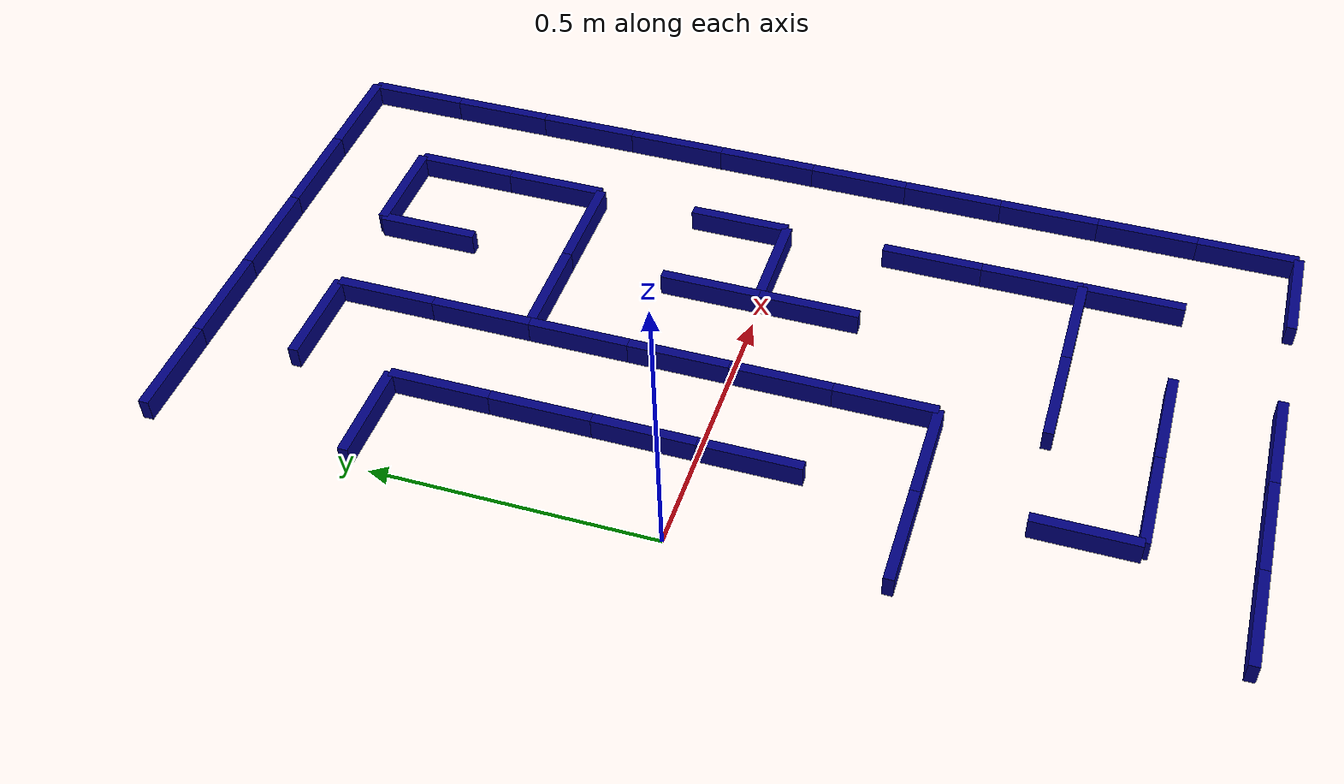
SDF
<sdf version="1.6">
 <world name="room">
  <include><uri>model://sun</uri></include>
  <model name="wall3">
   <static>true</static>
   <pose>0.27 0.72 0.02 0 0 0</pose>
   <link name="tile3">
    <pose>0 0 0.001 0 0 0</pose>
    <visual name="visual">
     <geometry><box><size>0.18 0.018000000000000002 0.04</size></box></geometry>
     <material><ambient>0 0 0.5 0</ambient></material>
    </visual>
    <collision name="collision">
     <geometry><box><size>0.18 0.018000000000000002 0.04</size></box></geometry>
    </collision>
   </link>
  </model>
  <model name="wall4">
   <static>true</static>
   <pose>0.63 0.72 0.02 0 0 0</pose>
   <link name="tile4">
    <pose>0 0 0.001 0 0 0</pose>
    <visual name="visual">
     <geometry><box><size>0.18 0.018000000000000002 0.04</size></box></geometry>
     <material><ambient>0 0 0.5 0</ambient></material>
    </visual>
    <collision name="collision">
     <geometry><box><size>0.18 0.018000000000000002 0.04</size></box></geometry>
    </collision>
   </link>
  </model>
  <model name="wall8">
   <static>true</static>
   <pose>0.09 0.54 0.02 0 0 0</pose>
   <link name="tile8">
    <pose>0 0 0.001 0 0 0</pose>
    <visual name="visual">
     <geometry><box><size>0.18 0.018000000000000002 0.04</size></box></geometry>
     <material><ambient>0 0 0.5 0</ambient></material>
    </visual>
    <collision name="collision">
     <geometry><box><size>0.18 0.018000000000000002 0.04</size></box></geometry>
    </collision>
   </link>
  </model>
  <model name="wall9">
   <static>true</static>
   <pose>0.36 0.63 0.02 0 0 0</pose>
   <link name="tile9">
    <pose>0 0 0.001 0 0 0</pose>
    <visual name="visual">
     <geometry><box><size>0.018000000000000002 0.18 0.04</size></box></geometry>
     <material><ambient>0 0 0.5 0</ambient></material>
    </visual>
    <collision name="collision">
     <geometry><box><size>0.018000000000000002 0.18 0.04</size></box></geometry>
    </collision>
   </link>
  </model>
  <model name="wall10">
   <static>true</static>
   <pose>0.54 0.63 0.02 0 0 0</pose>
   <link name="tile10">
    <pose>0 0 0.001 0 0 0</pose>
    <visual name="visual">
     <geometry><box><size>0.018000000000000002 0.18 0.04</size></box></geometry>
     <material><ambient>0 0 0.5 0</ambient></material>
    </visual>
    <collision name="collision">
     <geometry><box><size>0.018000000000000002 0.18 0.04</size></box></geometry>
    </collision>
   </link>
  </model>
  <model name="wall11">
   <static>true</static>
   <pose>0.72 0.63 0.02 0 0 0</pose>
   <link name="tile11">
    <pose>0 0 0.001 0 0 0</pose>
    <visual name="visual">
     <geometry><box><size>0.018000000000000002 0.18 0.04</size></box></geometry>
     <material><ambient>0 0 0.5 0</ambient></material>
    </visual>
    <collision name="collision">
     <geometry><box><size>0.018000000000000002 0.18 0.04</size></box></geometry>
    </collision>
   </link>
  </model>
  <model name="wall16">
   <static>true</static>
   <pose>0.18 0.45 0.02 0 0 0</pose>
   <link name="tile16">
    <pose>0 0 0.001 0 0 0</pose>
    <visual name="visual">
     <geometry><box><size>0.018000000000000002 0.18 0.04</size></box></geometry>
     <material><ambient>0 0 0.5 0</ambient></material>
    </visual>
    <collision name="collision">
     <geometry><box><size>0.018000000000000002 0.18 0.04</size></box></geometry>
    </collision>
   </link>
  </model>
  <model name="wall17">
   <static>true</static>
   <pose>0.36 0.45 0.02 0 0 0</pose>
   <link name="tile17">
    <pose>0 0 0.001 0 0 0</pose>
    <visual name="visual">
     <geometry><box><size>0.018000000000000002 0.18 0.04</size></box></geometry>
     <material><ambient>0 0 0.5 0</ambient></material>
    </visual>
    <collision name="collision">
     <geometry><box><size>0.018000000000000002 0.18 0.04</size></box></geometry>
    </collision>
   </link>
  </model>
  <model name="wall18">
   <static>true</static>
   <pose>0.45 0.36 0.02 0 0 0</pose>
   <link name="tile18">
    <pose>0 0 0.001 0 0 0</pose>
    <visual name="visual">
     <geometry><box><size>0.18 0.018000000000000002 0.04</size></box></geometry>
     <material><ambient>0 0 0.5 0</ambient></material>
    </visual>
    <collision name="collision">
     <geometry><box><size>0.18 0.018000000000000002 0.04</size></box></geometry>
    </collision>
   </link>
  </model>
  <model name="wall19">
   <static>true</static>
   <pose>0.72 0.45 0.02 0 0 0</pose>
   <link name="tile19">
    <pose>0 0 0.001 0 0 0</pose>
    <visual name="visual">
     <geometry><box><size>0.018000000000000002 0.18 0.04</size></box></geometry>
     <material><ambient>0 0 0.5 0</ambient></material>
    </visual>
    <collision name="collision">
     <geometry><box><size>0.018000000000000002 0.18 0.04</size></box></geometry>
    </collision>
   </link>
  </model>
  <model name="wall23">
   <static>true</static>
   <pose>0.18 0.27 0.02 0 0 0</pose>
   <link name="tile23">
    <pose>0 0 0.001 0 0 0</pose>
    <visual name="visual">
     <geometry><box><size>0.018000000000000002 0.18 0.04</size></box></geometry>
     <material><ambient>0 0 0.5 0</ambient></material>
    </visual>
    <collision name="collision">
     <geometry><box><size>0.018000000000000002 0.18 0.04</size></box></geometry>
    </collision>
   </link>
  </model>
  <model name="wall24">
   <static>true</static>
   <pose>0.36 0.27 0.02 0 0 0</pose>
   <link name="tile24">
    <pose>0 0 0.001 0 0 0</pose>
    <visual name="visual">
     <geometry><box><size>0.018000000000000002 0.18 0.04</size></box></geometry>
     <material><ambient>0 0 0.5 0</ambient></material>
    </visual>
    <collision name="collision">
     <geometry><box><size>0.018000000000000002 0.18 0.04</size></box></geometry>
    </collision>
   </link>
  </model>
  <model name="wall25">
   <static>true</static>
   <pose>0.63 0.36 0.02 0 0 0</pose>
   <link name="tile25">
    <pose>0 0 0.001 0 0 0</pose>
    <visual name="visual">
     <geometry><box><size>0.18 0.018000000000000002 0.04</size></box></geometry>
     <material><ambient>0 0 0.5 0</ambient></material>
    </visual>
    <collision name="collision">
     <geometry><box><size>0.18 0.018000000000000002 0.04</size></box></geometry>
    </collision>
   </link>
  </model>
  <model name="wall29">
   <static>true</static>
   <pose>0.18 0.09 0.02 0 0 0</pose>
   <link name="tile29">
    <pose>0 0 0.001 0 0 0</pose>
    <visual name="visual">
     <geometry><box><size>0.018000000000000002 0.18 0.04</size></box></geometry>
     <material><ambient>0 0 0.5 0</ambient></material>
    </visual>
    <collision name="collision">
     <geometry><box><size>0.018000000000000002 0.18 0.04</size></box></geometry>
    </collision>
   </link>
  </model>
  <model name="wall30">
   <static>true</static>
   <pose>0.36 0.09 0.02 0 0 0</pose>
   <link name="tile30">
    <pose>0 0 0.001 0 0 0</pose>
    <visual name="visual">
     <geometry><box><size>0.018000000000000002 0.18 0.04</size></box></geometry>
     <material><ambient>0 0 0.5 0</ambient></material>
    </visual>
    <collision name="collision">
     <geometry><box><size>0.018000000000000002 0.18 0.04</size></box></geometry>
    </collision>
   </link>
  </model>
  <model name="wall31">
   <static>true</static>
   <pose>0.54 0.09 0.02 0 0 0</pose>
   <link name="tile31">
    <pose>0 0 0.001 0 0 0</pose>
    <visual name="visual">
     <geometry><box><size>0.018000000000000002 0.18 0.04</size></box></geometry>
     <material><ambient>0 0 0.5 0</ambient></material>
    </visual>
    <collision name="collision">
     <geometry><box><size>0.018000000000000002 0.18 0.04</size></box></geometry>
    </collision>
   </link>
  </model>
  <model name="wall32">
   <static>true</static>
   <pose>0.72 0.09 0.02 0 0 0</pose>
   <link name="tile32">
    <pose>0 0 0.001 0 0 0</pose>
    <visual name="visual">
     <geometry><box><size>0.018000000000000002 0.18 0.04</size></box></geometry>
     <material><ambient>0 0 0.5 0</ambient></material>
    </visual>
    <collision name="collision">
     <geometry><box><size>0.018000000000000002 0.18 0.04</size></box></geometry>
    </collision>
   </link>
  </model>
  <model name="wall37">
   <static>true</static>
   <pose>0.18 -0.09 0.02 0 0 0</pose>
   <link name="tile37">
    <pose>0 0 0.001 0 0 0</pose>
    <visual name="visual">
     <geometry><box><size>0.018000000000000002 0.18 0.04</size></box></geometry>
     <material><ambient>0 0 0.5 0</ambient></material>
    </visual>
    <collision name="collision">
     <geometry><box><size>0.018000000000000002 0.18 0.04</size></box></geometry>
    </collision>
   </link>
  </model>
  <model name="wall38">
   <static>true</static>
   <pose>0.36 -0.09 0.02 0 0 0</pose>
   <link name="tile38">
    <pose>0 0 0.001 0 0 0</pose>
    <visual name="visual">
     <geometry><box><size>0.018000000000000002 0.18 0.04</size></box></geometry>
     <material><ambient>0 0 0.5 0</ambient></material>
    </visual>
    <collision name="collision">
     <geometry><box><size>0.018000000000000002 0.18 0.04</size></box></geometry>
    </collision>
   </link>
  </model>
  <model name="wall39">
   <static>true</static>
   <pose>0.54 -0.09 0.02 0 0 0</pose>
   <link name="tile39">
    <pose>0 0 0.001 0 0 0</pose>
    <visual name="visual">
     <geometry><box><size>0.018000000000000002 0.18 0.04</size></box></geometry>
     <material><ambient>0 0 0.5 0</ambient></material>
    </visual>
    <collision name="collision">
     <geometry><box><size>0.018000000000000002 0.18 0.04</size></box></geometry>
    </collision>
   </link>
  </model>
  <model name="wall40">
   <static>true</static>
   <pose>0.63 0.0 0.02 0 0 0</pose>
   <link name="tile40">
    <pose>0 0 0.001 0 0 0</pose>
    <visual name="visual">
     <geometry><box><size>0.18 0.018000000000000002 0.04</size></box></geometry>
     <material><ambient>0 0 0.5 0</ambient></material>
    </visual>
    <collision name="collision">
     <geometry><box><size>0.18 0.018000000000000002 0.04</size></box></geometry>
    </collision>
   </link>
  </model>
  <model name="wall44">
   <static>true</static>
   <pose>0.09 -0.36 0.02 0 0 0</pose>
   <link name="tile44">
    <pose>0 0 0.001 0 0 0</pose>
    <visual name="visual">
     <geometry><box><size>0.18 0.018000000000000002 0.04</size></box></geometry>
     <material><ambient>0 0 0.5 0</ambient></material>
    </visual>
    <collision name="collision">
     <geometry><box><size>0.18 0.018000000000000002 0.04</size></box></geometry>
    </collision>
   </link>
  </model>
  <model name="wall45">
   <static>true</static>
   <pose>0.36 -0.27 0.02 0 0 0</pose>
   <link name="tile45">
    <pose>0 0 0.001 0 0 0</pose>
    <visual name="visual">
     <geometry><box><size>0.018000000000000002 0.18 0.04</size></box></geometry>
     <material><ambient>0 0 0.5 0</ambient></material>
    </visual>
    <collision name="collision">
     <geometry><box><size>0.018000000000000002 0.18 0.04</size></box></geometry>
    </collision>
   </link>
  </model>
  <model name="wall46">
   <static>true</static>
   <pose>0.72 -0.27 0.02 0 0 0</pose>
   <link name="tile46">
    <pose>0 0 0.001 0 0 0</pose>
    <visual name="visual">
     <geometry><box><size>0.018000000000000002 0.18 0.04</size></box></geometry>
     <material><ambient>0 0 0.5 0</ambient></material>
    </visual>
    <collision name="collision">
     <geometry><box><size>0.018000000000000002 0.18 0.04</size></box></geometry>
    </collision>
   </link>
  </model>
  <model name="wall51">
   <static>true</static>
   <pose>0.27 -0.36 0.02 0 0 0</pose>
   <link name="tile51">
    <pose>0 0 0.001 0 0 0</pose>
    <visual name="visual">
     <geometry><box><size>0.18 0.018000000000000002 0.04</size></box></geometry>
     <material><ambient>0 0 0.5 0</ambient></material>
    </visual>
    <collision name="collision">
     <geometry><box><size>0.18 0.018000000000000002 0.04</size></box></geometry>
    </collision>
   </link>
  </model>
  <model name="wall52">
   <static>true</static>
   <pose>0.45 -0.54 0.02 0 0 0</pose>
   <link name="tile52">
    <pose>0 0 0.001 0 0 0</pose>
    <visual name="visual">
     <geometry><box><size>0.18 0.018000000000000002 0.04</size></box></geometry>
     <material><ambient>0 0 0.5 0</ambient></material>
    </visual>
    <collision name="collision">
     <geometry><box><size>0.18 0.018000000000000002 0.04</size></box></geometry>
    </collision>
   </link>
  </model>
  <model name="wall53">
   <static>true</static>
   <pose>0.72 -0.45 0.02 0 0 0</pose>
   <link name="tile53">
    <pose>0 0 0.001 0 0 0</pose>
    <visual name="visual">
     <geometry><box><size>0.018000000000000002 0.18 0.04</size></box></geometry>
     <material><ambient>0 0 0.5 0</ambient></material>
    </visual>
    <collision name="collision">
     <geometry><box><size>0.018000000000000002 0.18 0.04</size></box></geometry>
    </collision>
   </link>
  </model>
  <model name="wall54">
   <static>true</static>
   <pose>0.63 -0.54 0.02 0 0 0</pose>
   <link name="tile54">
    <pose>0 0 0.001 0 0 0</pose>
    <visual name="visual">
     <geometry><box><size>0.18 0.018000000000000002 0.04</size></box></geometry>
     <material><ambient>0 0 0.5 0</ambient></material>
    </visual>
    <collision name="collision">
     <geometry><box><size>0.18 0.018000000000000002 0.04</size></box></geometry>
    </collision>
   </link>
  </model>
  <model name="wall60">
   <static>true</static>
   <pose>0.18 -0.63 0.02 0 0 0</pose>
   <link name="tile60">
    <pose>0 0 0.001 0 0 0</pose>
    <visual name="visual">
     <geometry><box><size>0.018000000000000002 0.18 0.04</size></box></geometry>
     <material><ambient>0 0 0.5 0</ambient></material>
    </visual>
    <collision name="collision">
     <geometry><box><size>0.018000000000000002 0.18 0.04</size></box></geometry>
    </collision>
   </link>
  </model>
  <model name="wall61">
   <static>true</static>
   <pose>0.27 -0.72 0.02 0 0 0</pose>
   <link name="tile61">
    <pose>0 0 0.001 0 0 0</pose>
    <visual name="visual">
     <geometry><box><size>0.18 0.018000000000000002 0.04</size></box></geometry>
     <material><ambient>0 0 0.5 0</ambient></material>
    </visual>
    <collision name="collision">
     <geometry><box><size>0.18 0.018000000000000002 0.04</size></box></geometry>
    </collision>
   </link>
  </model>
  <model name="wall62">
   <static>true</static>
   <pose>0.45 -0.72 0.02 0 0 0</pose>
   <link name="tile62">
    <pose>0 0 0.001 0 0 0</pose>
    <visual name="visual">
     <geometry><box><size>0.18 0.018000000000000002 0.04</size></box></geometry>
     <material><ambient>0 0 0.5 0</ambient></material>
    </visual>
    <collision name="collision">
     <geometry><box><size>0.18 0.018000000000000002 0.04</size></box></geometry>
    </collision>
   </link>
  </model>
  <model name="wall63">
   <static>true</static>
   <pose>0.72 -0.63 0.02 0 0 0</pose>
   <link name="tile63">
    <pose>0 0 0.001 0 0 0</pose>
    <visual name="visual">
     <geometry><box><size>0.018000000000000002 0.18 0.04</size></box></geometry>
     <material><ambient>0 0 0.5 0</ambient></material>
    </visual>
    <collision name="collision">
     <geometry><box><size>0.018000000000000002 0.18 0.04</size></box></geometry>
    </collision>
   </link>
  </model>
  <model name="wall69">
   <static>true</static>
   <pose>0.09 0.9 0.02 0 0 0</pose>
   <link name="tile69">
    <pose>0 0 0.001 0 0 0</pose>
    <visual name="visual">
     <geometry><box><size>0.18 0.018000000000000002 0.04</size></box></geometry>
     <material><ambient>0 0 0.5 0</ambient></material>
    </visual>
    <collision name="collision">
     <geometry><box><size>0.18 0.018000000000000002 0.04</size></box></geometry>
    </collision>
   </link>
  </model>
  <model name="wall70">
   <static>true</static>
   <pose>0.27 0.9 0.02 0 0 0</pose>
   <link name="tile70">
    <pose>0 0 0.001 0 0 0</pose>
    <visual name="visual">
     <geometry><box><size>0.18 0.018000000000000002 0.04</size></box></geometry>
     <material><ambient>0 0 0.5 0</ambient></material>
    </visual>
    <collision name="collision">
     <geometry><box><size>0.18 0.018000000000000002 0.04</size></box></geometry>
    </collision>
   </link>
  </model>
  <model name="wall71">
   <static>true</static>
   <pose>0.45 0.9 0.02 0 0 0</pose>
   <link name="tile71">
    <pose>0 0 0.001 0 0 0</pose>
    <visual name="visual">
     <geometry><box><size>0.18 0.018000000000000002 0.04</size></box></geometry>
     <material><ambient>0 0 0.5 0</ambient></material>
    </visual>
    <collision name="collision">
     <geometry><box><size>0.18 0.018000000000000002 0.04</size></box></geometry>
    </collision>
   </link>
  </model>
  <model name="wall72">
   <static>true</static>
   <pose>0.63 0.9 0.02 0 0 0</pose>
   <link name="tile72">
    <pose>0 0 0.001 0 0 0</pose>
    <visual name="visual">
     <geometry><box><size>0.18 0.018000000000000002 0.04</size></box></geometry>
     <material><ambient>0 0 0.5 0</ambient></material>
    </visual>
    <collision name="collision">
     <geometry><box><size>0.18 0.018000000000000002 0.04</size></box></geometry>
    </collision>
   </link>
  </model>
  <model name="wall73">
   <static>true</static>
   <pose>0.81 0.9 0.02 0 0 0</pose>
   <link name="tile73">
    <pose>0 0 0.001 0 0 0</pose>
    <visual name="visual">
     <geometry><box><size>0.18 0.018000000000000002 0.04</size></box></geometry>
     <material><ambient>0 0 0.5 0</ambient></material>
    </visual>
    <collision name="collision">
     <geometry><box><size>0.18 0.018000000000000002 0.04</size></box></geometry>
    </collision>
   </link>
  </model>
  <model name="wall79">
   <static>true</static>
   <pose>0.09 -0.9 0.02 0 0 0</pose>
   <link name="tile79">
    <pose>0 0 0.001 0 0 0</pose>
    <visual name="visual">
     <geometry><box><size>0.18 0.018000000000000002 0.04</size></box></geometry>
     <material><ambient>0 0 0.5 0</ambient></material>
    </visual>
    <collision name="collision">
     <geometry><box><size>0.18 0.018000000000000002 0.04</size></box></geometry>
    </collision>
   </link>
  </model>
  <model name="wall80">
   <static>true</static>
   <pose>0.27 -0.9 0.02 0 0 0</pose>
   <link name="tile80">
    <pose>0 0 0.001 0 0 0</pose>
    <visual name="visual">
     <geometry><box><size>0.18 0.018000000000000002 0.04</size></box></geometry>
     <material><ambient>0 0 0.5 0</ambient></material>
    </visual>
    <collision name="collision">
     <geometry><box><size>0.18 0.018000000000000002 0.04</size></box></geometry>
    </collision>
   </link>
  </model>
  <model name="wall81">
   <static>true</static>
   <pose>0.45 -0.9 0.02 0 0 0</pose>
   <link name="tile81">
    <pose>0 0 0.001 0 0 0</pose>
    <visual name="visual">
     <geometry><box><size>0.18 0.018000000000000002 0.04</size></box></geometry>
     <material><ambient>0 0 0.5 0</ambient></material>
    </visual>
    <collision name="collision">
     <geometry><box><size>0.18 0.018000000000000002 0.04</size></box></geometry>
    </collision>
   </link>
  </model>
  <model name="wall82">
   <static>true</static>
   <pose>0.45 -0.9 0.02 0 0 0</pose>
   <link name="tile82">
    <pose>0 0 0.001 0 0 0</pose>
    <visual name="visual">
     <geometry><box><size>0.18 0.018000000000000002 0.04</size></box></geometry>
     <material><ambient>0 0 0.5 0</ambient></material>
    </visual>
    <collision name="collision">
     <geometry><box><size>0.18 0.018000000000000002 0.04</size></box></geometry>
    </collision>
   </link>
  </model>
  <model name="wall83">
   <static>true</static>
   <pose>0.81 -0.9 0.02 0 0 0</pose>
   <link name="tile83">
    <pose>0 0 0.001 0 0 0</pose>
    <visual name="visual">
     <geometry><box><size>0.18 0.018000000000000002 0.04</size></box></geometry>
     <material><ambient>0 0 0.5 0</ambient></material>
    </visual>
    <collision name="collision">
     <geometry><box><size>0.18 0.018000000000000002 0.04</size></box></geometry>
    </collision>
   </link>
  </model>
  <model name="wall94">
   <static>true</static>
   <pose>0.9 0.81 0.02 0 0 0</pose>
   <link name="tile94">
    <pose>0 0 0.001 0 0 0</pose>
    <visual name="visual">
     <geometry><box><size>0.018000000000000002 0.18 0.04</size></box></geometry>
     <material><ambient>0 0 0.5 0</ambient></material>
    </visual>
    <collision name="collision">
     <geometry><box><size>0.018000000000000002 0.18 0.04</size></box></geometry>
    </collision>
   </link>
  </model>
  <model name="wall95">
   <static>true</static>
   <pose>0.9 0.63 0.02 0 0 0</pose>
   <link name="tile95">
    <pose>0 0 0.001 0 0 0</pose>
    <visual name="visual">
     <geometry><box><size>0.018000000000000002 0.18 0.04</size></box></geometry>
     <material><ambient>0 0 0.5 0</ambient></material>
    </visual>
    <collision name="collision">
     <geometry><box><size>0.018000000000000002 0.18 0.04</size></box></geometry>
    </collision>
   </link>
  </model>
  <model name="wall96">
   <static>true</static>
   <pose>0.9 0.45 0.02 0 0 0</pose>
   <link name="tile96">
    <pose>0 0 0.001 0 0 0</pose>
    <visual name="visual">
     <geometry><box><size>0.018000000000000002 0.18 0.04</size></box></geometry>
     <material><ambient>0 0 0.5 0</ambient></material>
    </visual>
    <collision name="collision">
     <geometry><box><size>0.018000000000000002 0.18 0.04</size></box></geometry>
    </collision>
   </link>
  </model>
  <model name="wall97">
   <static>true</static>
   <pose>0.9 0.27 0.02 0 0 0</pose>
   <link name="tile97">
    <pose>0 0 0.001 0 0 0</pose>
    <visual name="visual">
     <geometry><box><size>0.018000000000000002 0.18 0.04</size></box></geometry>
     <material><ambient>0 0 0.5 0</ambient></material>
    </visual>
    <collision name="collision">
     <geometry><box><size>0.018000000000000002 0.18 0.04</size></box></geometry>
    </collision>
   </link>
  </model>
  <model name="wall98">
   <static>true</static>
   <pose>0.9 0.09 0.02 0 0 0</pose>
   <link name="tile98">
    <pose>0 0 0.001 0 0 0</pose>
    <visual name="visual">
     <geometry><box><size>0.018000000000000002 0.18 0.04</size></box></geometry>
     <material><ambient>0 0 0.5 0</ambient></material>
    </visual>
    <collision name="collision">
     <geometry><box><size>0.018000000000000002 0.18 0.04</size></box></geometry>
    </collision>
   </link>
  </model>
  <model name="wall99">
   <static>true</static>
   <pose>0.9 -0.09 0.02 0 0 0</pose>
   <link name="tile99">
    <pose>0 0 0.001 0 0 0</pose>
    <visual name="visual">
     <geometry><box><size>0.018000000000000002 0.18 0.04</size></box></geometry>
     <material><ambient>0 0 0.5 0</ambient></material>
    </visual>
    <collision name="collision">
     <geometry><box><size>0.018000000000000002 0.18 0.04</size></box></geometry>
    </collision>
   </link>
  </model>
  <model name="wall100">
   <static>true</static>
   <pose>0.9 -0.27 0.02 0 0 0</pose>
   <link name="tile100">
    <pose>0 0 0.001 0 0 0</pose>
    <visual name="visual">
     <geometry><box><size>0.018000000000000002 0.18 0.04</size></box></geometry>
     <material><ambient>0 0 0.5 0</ambient></material>
    </visual>
    <collision name="collision">
     <geometry><box><size>0.018000000000000002 0.18 0.04</size></box></geometry>
    </collision>
   </link>
  </model>
  <model name="wall101">
   <static>true</static>
   <pose>0.9 -0.45 0.02 0 0 0</pose>
   <link name="tile101">
    <pose>0 0 0.001 0 0 0</pose>
    <visual name="visual">
     <geometry><box><size>0.018000000000000002 0.18 0.04</size></box></geometry>
     <material><ambient>0 0 0.5 0</ambient></material>
    </visual>
    <collision name="collision">
     <geometry><box><size>0.018000000000000002 0.18 0.04</size></box></geometry>
    </collision>
   </link>
  </model>
  <model name="wall102">
   <static>true</static>
   <pose>0.9 -0.63 0.02 0 0 0</pose>
   <link name="tile102">
    <pose>0 0 0.001 0 0 0</pose>
    <visual name="visual">
     <geometry><box><size>0.018000000000000002 0.18 0.04</size></box></geometry>
     <material><ambient>0 0 0.5 0</ambient></material>
    </visual>
    <collision name="collision">
     <geometry><box><size>0.018000000000000002 0.18 0.04</size></box></geometry>
    </collision>
   </link>
  </model>
  <model name="wall103">
   <static>true</static>
   <pose>0.9 -0.81 0.02 0 0 0</pose>
   <link name="tile103">
    <pose>0 0 0.001 0 0 0</pose>
    <visual name="visual">
     <geometry><box><size>0.018000000000000002 0.18 0.04</size></box></geometry>
     <material><ambient>0 0 0.5 0</ambient></material>
    </visual>
    <collision name="collision">
     <geometry><box><size>0.018000000000000002 0.18 0.04</size></box></geometry>
    </collision>
   </link>
  </model>
 </world>
</sdf>
